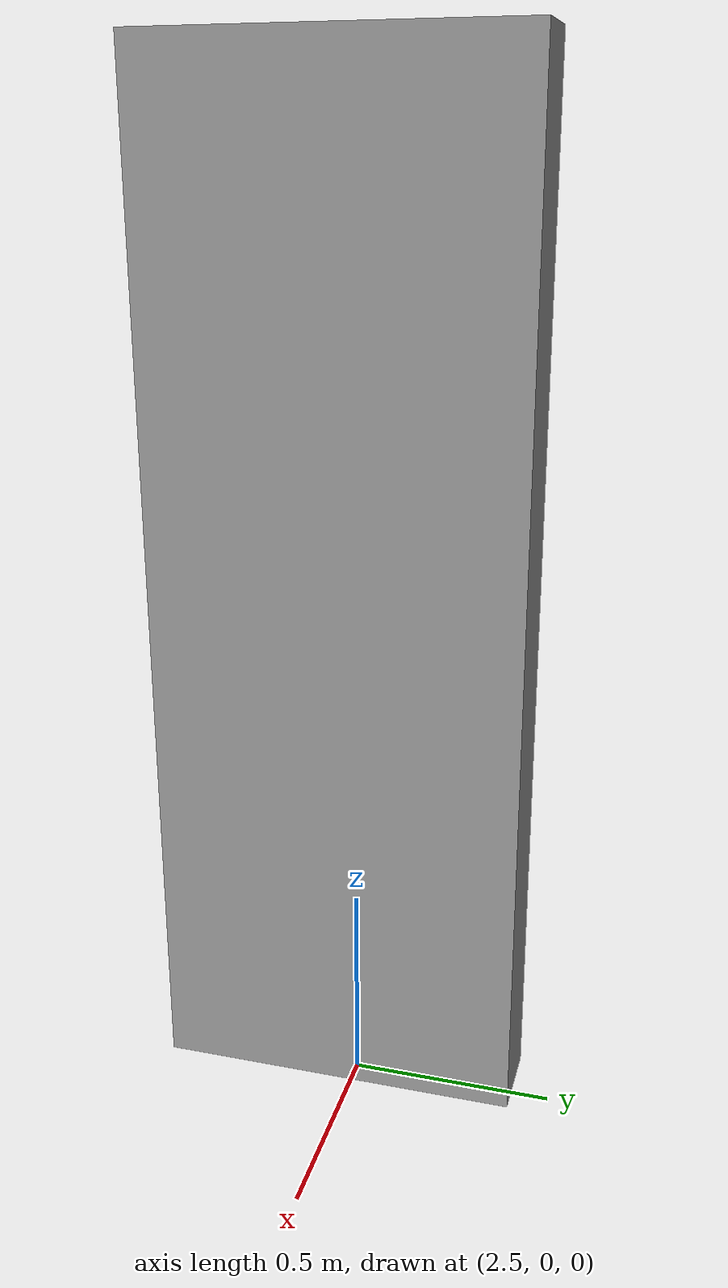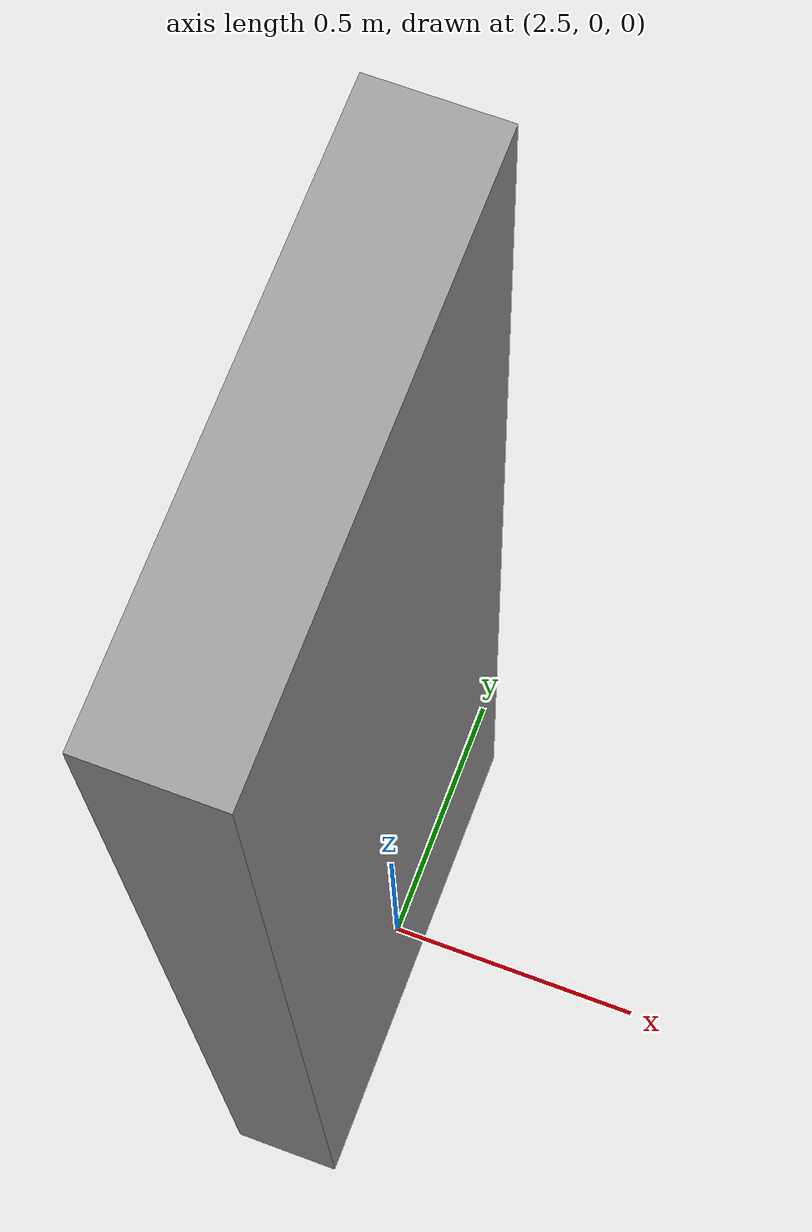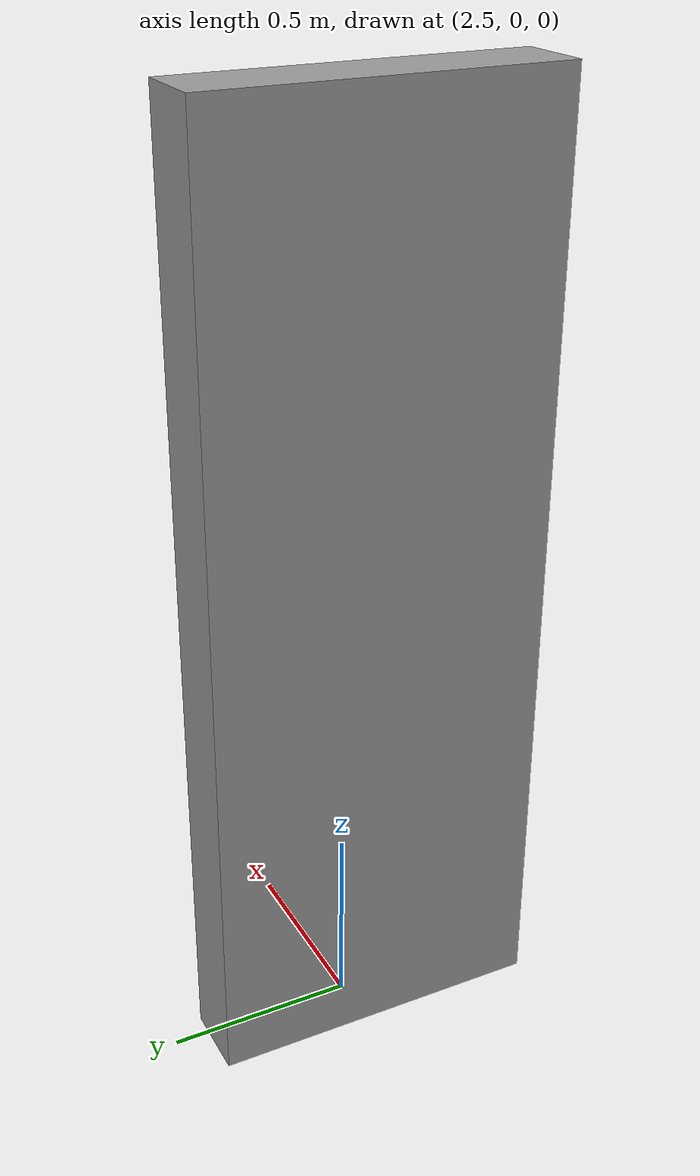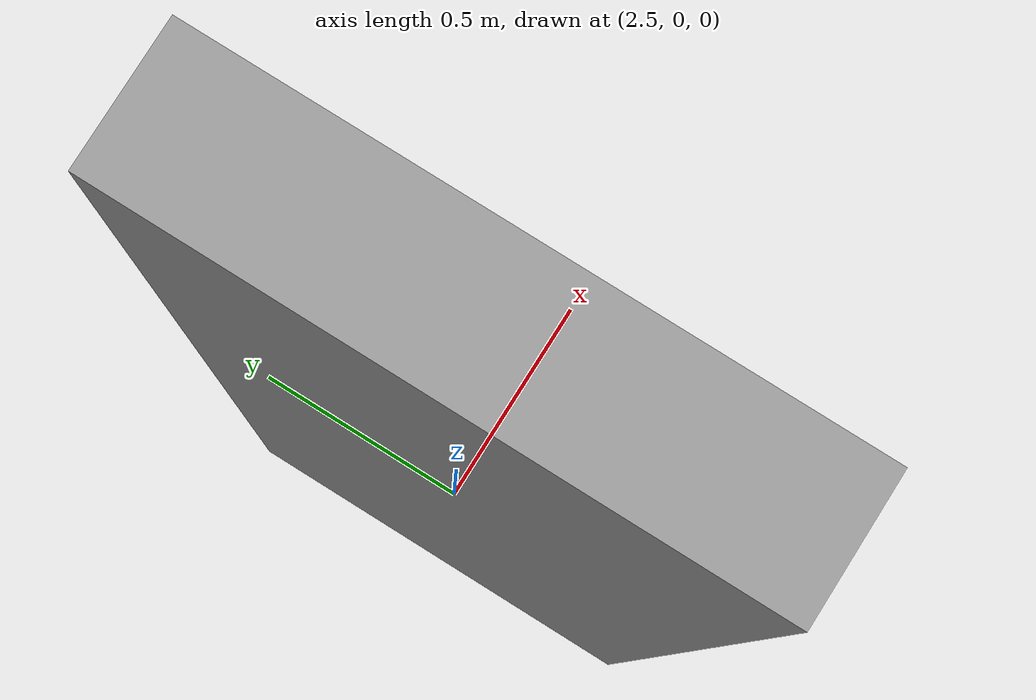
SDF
<?xml version='1.0'?>
<sdf version='1.4'>
  <model name='NewWorld_1'>
    <link name='Wall_7'>
      <collision name='Wall_7_Collision'>
        <geometry>
          <box>
            <size>0.903542 0.2 2.5</size>
          </box>
        </geometry>
        <pose>0 0 1.25 0 -0 0</pose>
      </collision>
      <visual name='Wall_7_Visual'>
        <pose>0 0 1.25 0 -0 0</pose>
        <geometry>
          <box>
            <size>0.903542 0.2 2.5</size>
          </box>
        </geometry>
        <material>
          <script>
            <uri>file://media/materials/scripts/gazebo.material</uri>
            <name>Gazebo/Grey</name>
          </script>
        </material>
      </visual>
      <velocity_decay>
        <linear>0</linear>
        <angular>0</angular>
      </velocity_decay>
      <pose>2.45739 -0.045115 0 0 -0 1.5708</pose>
    </link>
    <static>1</static>
  </model>
</sdf>
